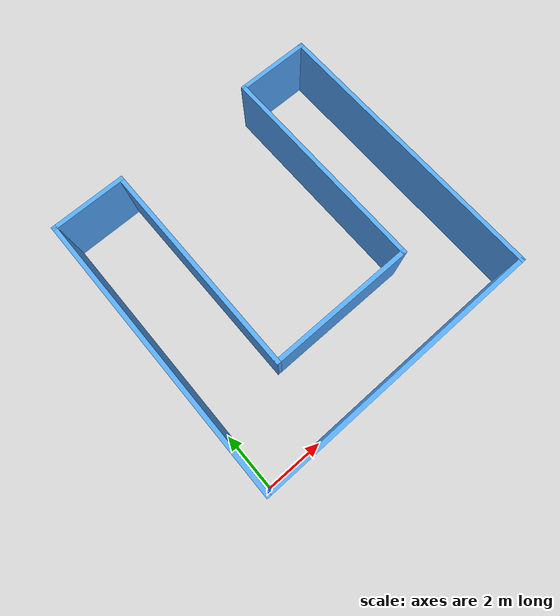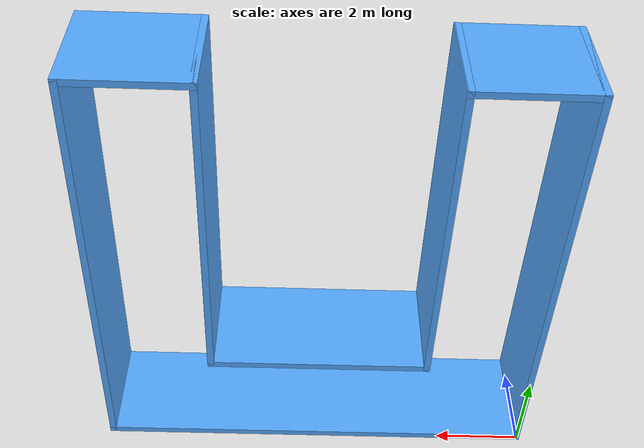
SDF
<?xml version='1.0'?>
<sdf version='1.7'>
  <model name='mybuilding'>
    <pose>5 5 0 0 -0 0</pose>
    <link name='Wall_12'>
      <collision name='Wall_12_Collision'>
        <geometry>
          <box>
            <size>10.15 0.15 2.5</size>
          </box>
        </geometry>
        <pose>0 0 1.25 0 -0 0</pose>
      </collision>
      <visual name='Wall_12_Visual'>
        <pose>0 0 1.25 0 -0 0</pose>
        <geometry>
          <box>
            <size>10.15 0.15 2.5</size>
          </box>
        </geometry>
        <material>
          <script>
            <uri>file://media/materials/scripts/gazebo.material</uri>
            <name>Gazebo/Grey</name>
          </script>
          <ambient>0.333333 0.666667 1 1</ambient>
        </material>
        <meta>
          <layer>0</layer>
        </meta>
      </visual>
      <pose>-5 -0 0 0 -0 1.5708</pose>
    </link>
    <link name='Wall_14'>
      <collision name='Wall_14_Collision'>
        <geometry>
          <box>
            <size>10.15 0.15 2.5</size>
          </box>
        </geometry>
        <pose>0 0 1.25 0 -0 0</pose>
      </collision>
      <visual name='Wall_14_Visual'>
        <pose>0 0 1.25 0 -0 0</pose>
        <geometry>
          <box>
            <size>10.15 0.15 2.5</size>
          </box>
        </geometry>
        <material>
          <script>
            <uri>file://media/materials/scripts/gazebo.material</uri>
            <name>Gazebo/Grey</name>
          </script>
          <ambient>0.333333 0.666667 1 1</ambient>
        </material>
        <meta>
          <layer>0</layer>
        </meta>
      </visual>
      <pose>5 -0 0 0 -0 1.5708</pose>
    </link>
    <link name='Wall_16'>
      <collision name='Wall_16_Collision'>
        <geometry>
          <box>
            <size>2.65 0.15 2.5</size>
          </box>
        </geometry>
        <pose>0 0 1.25 0 -0 0</pose>
      </collision>
      <visual name='Wall_16_Visual'>
        <pose>0 0 1.25 0 -0 0</pose>
        <geometry>
          <box>
            <size>2.65 0.15 2.5</size>
          </box>
        </geometry>
        <material>
          <script>
            <uri>file://media/materials/scripts/gazebo.material</uri>
            <name>Gazebo/Grey</name>
          </script>
          <ambient>0.333333 0.666667 1 1</ambient>
        </material>
        <meta>
          <layer>0</layer>
        </meta>
      </visual>
      <pose>-3.75 5 0 0 -0 0</pose>
    </link>
    <link name='Wall_18'>
      <collision name='Wall_18_Collision'>
        <geometry>
          <box>
            <size>7.65 0.15 2.5</size>
          </box>
        </geometry>
        <pose>0 0 1.25 0 -0 0</pose>
      </collision>
      <visual name='Wall_18_Visual'>
        <pose>0 0 1.25 0 -0 0</pose>
        <geometry>
          <box>
            <size>7.65 0.15 2.5</size>
          </box>
        </geometry>
        <material>
          <script>
            <uri>file://media/materials/scripts/gazebo.material</uri>
            <name>Gazebo/Grey</name>
          </script>
          <ambient>0.333333 0.666667 1 1</ambient>
        </material>
        <meta>
          <layer>0</layer>
        </meta>
      </visual>
      <pose>-2.5 1.25 0 0 -0 -1.5708</pose>
    </link>
    <link name='Wall_20'>
      <collision name='Wall_20_Collision'>
        <geometry>
          <box>
            <size>5.15 0.15 2.5</size>
          </box>
        </geometry>
        <pose>0 0 1.25 0 -0 0</pose>
      </collision>
      <visual name='Wall_20_Visual'>
        <pose>0 0 1.25 0 -0 0</pose>
        <geometry>
          <box>
            <size>5.15 0.15 2.5</size>
          </box>
        </geometry>
        <material>
          <script>
            <uri>file://media/materials/scripts/gazebo.material</uri>
            <name>Gazebo/Grey</name>
          </script>
          <ambient>0.333333 0.666667 1 1</ambient>
        </material>
        <meta>
          <layer>0</layer>
        </meta>
      </visual>
      <pose>-0 -2.5 0 0 -0 0</pose>
    </link>
    <link name='Wall_22'>
      <collision name='Wall_22_Collision'>
        <geometry>
          <box>
            <size>7.65 0.15 2.5</size>
          </box>
        </geometry>
        <pose>0 0 1.25 0 -0 0</pose>
      </collision>
      <visual name='Wall_22_Visual'>
        <pose>0 0 1.25 0 -0 0</pose>
        <geometry>
          <box>
            <size>7.65 0.15 2.5</size>
          </box>
        </geometry>
        <material>
          <script>
            <uri>file://media/materials/scripts/gazebo.material</uri>
            <name>Gazebo/Grey</name>
          </script>
          <ambient>0.333333 0.666667 1 1</ambient>
        </material>
        <meta>
          <layer>0</layer>
        </meta>
      </visual>
      <pose>2.5 1.25 0 0 -0 1.5708</pose>
    </link>
    <link name='Wall_24'>
      <collision name='Wall_24_Collision'>
        <geometry>
          <box>
            <size>2.65 0.15 2.5</size>
          </box>
        </geometry>
        <pose>0 0 1.25 0 -0 0</pose>
      </collision>
      <visual name='Wall_24_Visual'>
        <pose>0 0 1.25 0 -0 0</pose>
        <geometry>
          <box>
            <size>2.65 0.15 2.5</size>
          </box>
        </geometry>
        <material>
          <script>
            <uri>file://media/materials/scripts/gazebo.material</uri>
            <name>Gazebo/Grey</name>
          </script>
          <ambient>0.333333 0.666667 1 1</ambient>
        </material>
        <meta>
          <layer>0</layer>
        </meta>
      </visual>
      <pose>3.75 5 0 0 -0 0</pose>
    </link>
    <link name='Wall_6'>
      <collision name='Wall_6_Collision'>
        <geometry>
          <box>
            <size>10.15 0.15 2.5</size>
          </box>
        </geometry>
        <pose>0 0 1.25 0 -0 0</pose>
      </collision>
      <visual name='Wall_6_Visual'>
        <pose>0 0 1.25 0 -0 0</pose>
        <geometry>
          <box>
            <size>10.15 0.15 2.5</size>
          </box>
        </geometry>
        <material>
          <script>
            <uri>file://media/materials/scripts/gazebo.material</uri>
            <name>Gazebo/Grey</name>
          </script>
          <ambient>0.333333 0.666667 1 1</ambient>
        </material>
        <meta>
          <layer>0</layer>
        </meta>
      </visual>
      <pose>-0 -5 0 0 -0 0</pose>
    </link>
    <static>1</static>
  </model>
</sdf>
